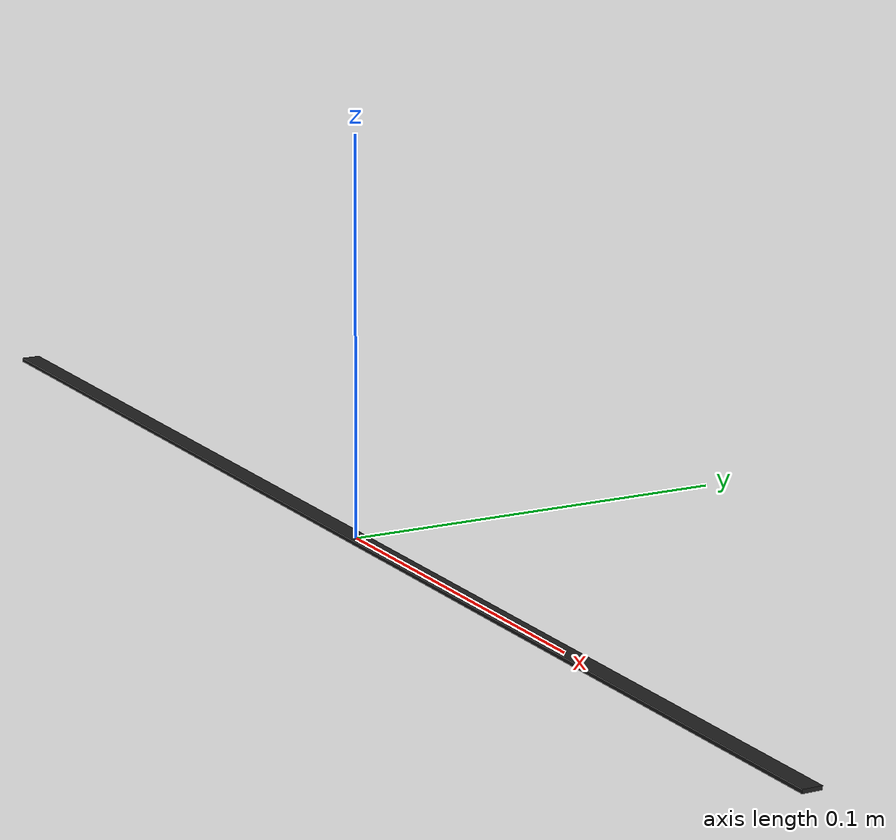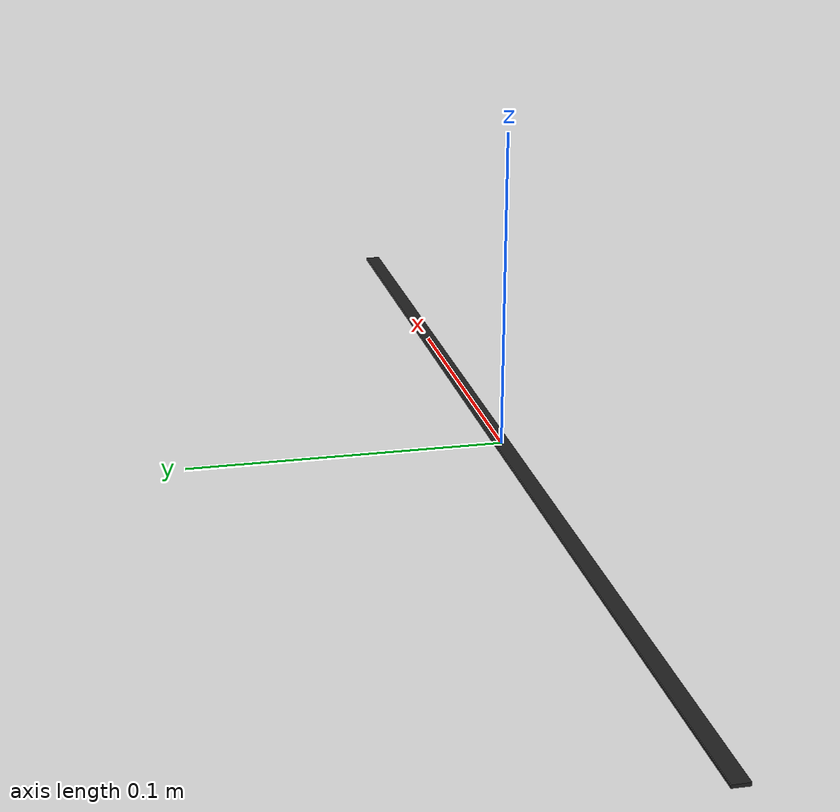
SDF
<sdf version="1.7">
  <model name="welding_line">
    <link name="link">
      <inertial>
        <mass>1</mass>
        <inertia>
          <ixx>0.166667</ixx>
          <ixy>0</ixy>
          <ixz>0</ixz>
          <iyy>0.166667</iyy>
          <iyz>0</iyz>
          <izz>0.166667</izz>
        </inertia>
        <pose>0.5899923045627683 0.1593102883465877 0.2105226930361697 0.0 -0.0 -3.0098888425615944</pose>
      </inertial>
      <self_collide>0</self_collide>
      <enable_wind>0</enable_wind>
      <kinematic>0</kinematic>
      <pose>0 0 0 0 -0 0</pose>
      <gravity>1</gravity>
      <visual name="visual">
        <geometry>
          <box>
<size>0.4 0.005 0.001</size>
</box>
        </geometry>
        <material>
          <script>
            <name>Gazebo/Black</name>
            <uri>file://media/materials/scripts/gazebo.material</uri>
          </script>
        </material>
      </visual>
    </link>
    <static>1</static>
  </model>
</sdf>
